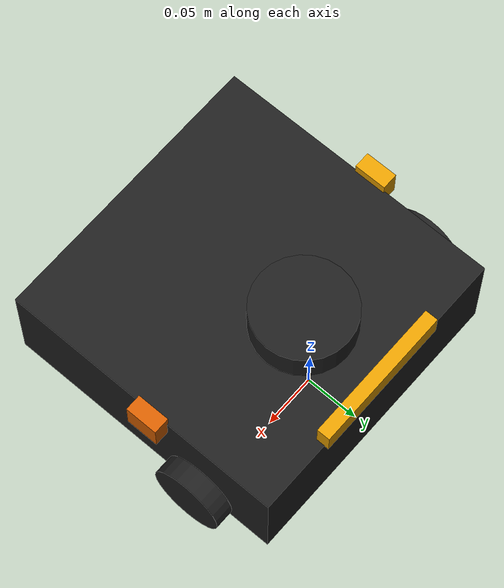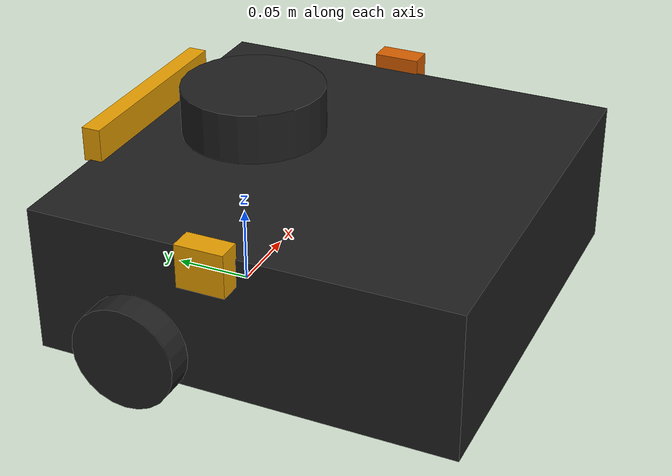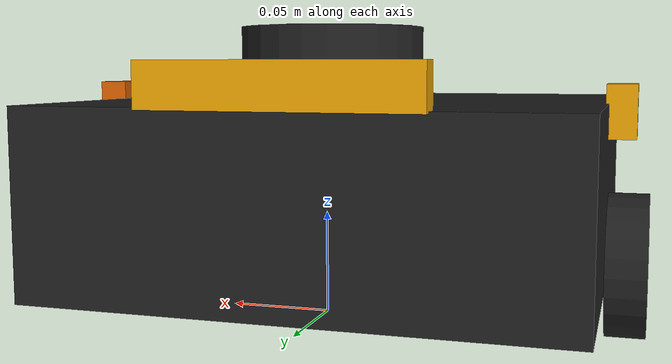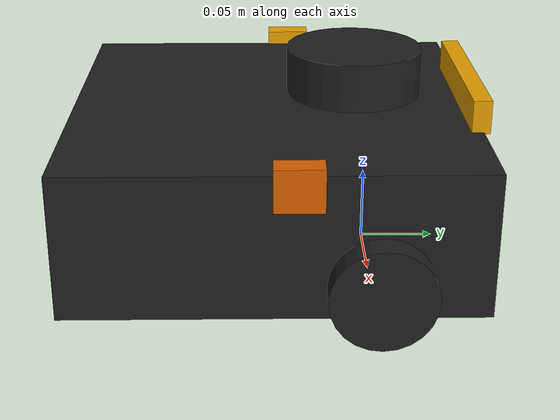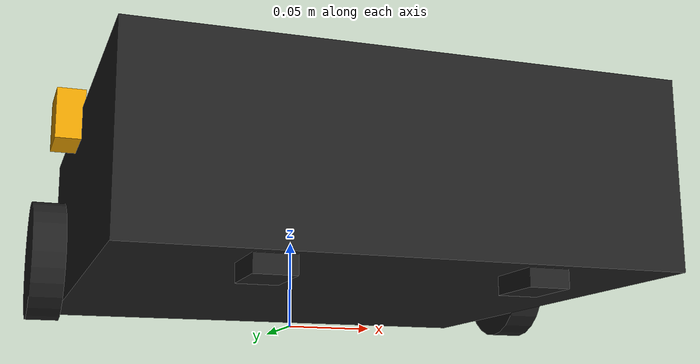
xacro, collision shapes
<?xml version="1.0" ?>
<robot name="turtlebot3_waffle_for_open_manipulator" xmlns:xacro="http://ros.org/wiki/xacro">
  <xacro:include filename="$(find gazebo_indus)/urdf/common_properties.xacro"/>
  <xacro:include filename="$(find gazebo_indus)/urdf/turtlebot3_waffle.gazebo.xacro"/>

  <xacro:property name="r200_cam_rgb_px" value="0.005"/>
  <xacro:property name="r200_cam_rgb_py" value="0.018"/>
  <xacro:property name="r200_cam_rgb_pz" value="0.013"/>
  <xacro:property name="r200_cam_depth_offset" value="0.01"/>

  <link name="base_footprint"/>

  <joint name="base_joint" type="fixed">
    <parent link="base_footprint"/>
    <child link="base_link" />
    <origin xyz="0 0 0.010" rpy="0 0 1.57"/>
  </joint>

  <link name="base_link">
    <visual>
      <origin xyz="-0.064 0 0.0" rpy="0 0 0"/>
      <geometry>
        <mesh filename="package://gazebo_indus/meshes/bases/waffle_base_for_open_manipulator.stl" scale="0.001 0.001 0.001"/>
      </geometry>
      <material name="light_black"/>
    </visual>

    <collision>
      <origin xyz="-0.064 0 0.047" rpy="0 0 0"/>
      <geometry>
        <box size="0.266 0.266 0.094"/>
      </geometry>
    </collision>

    <inertial>
      <origin xyz="0 0 0" rpy="0 0 0"/>
      <mass value="1.3729096e+00"/>
      <inertia ixx="8.7002718e-03" ixy="-4.7576583e-05" ixz="1.1160499e-04"
               iyy="8.6195418e-03" iyz="-3.5422299e-06"
               izz="1.4612727e-02" />
    </inertial>
  </link>

  <joint name="wheel_left_joint" type="continuous">
    <parent link="base_link"/>
    <child link="wheel_left_link"/>
    <origin xyz="0.0 0.144 0.023" rpy="-1.57 0 0"/>
    <axis xyz="0 0 1"/>
  </joint>

  <link name="wheel_left_link">
    <visual>
      <origin xyz="0 0 0" rpy="1.57 0 0"/>
      <geometry>
        <mesh filename="package://gazebo_indus/meshes/wheels/left_tire.stl" scale="0.001 0.001 0.001"/>
      </geometry>
      <material name="dark"/>
    </visual>

    <collision>
      <origin xyz="0 0.001 0" rpy="0 0 0"/>
      <geometry>
        <cylinder length="0.018" radius="0.033"/>
      </geometry>
    </collision>

    <inertial>
      <origin xyz="0 0 0" />
      <mass value="2.8498940e-02" />
      <inertia ixx="1.1175580e-05" ixy="-4.2369783e-11" ixz="-5.9381719e-09"
               iyy="1.1192413e-05" iyz="-1.4400107e-11"
               izz="2.0712558e-05" />
      </inertial>
  </link>

  <joint name="wheel_right_joint" type="continuous">
    <parent link="base_link"/>
    <child link="wheel_right_link"/>
    <origin xyz="0.0 -0.144 0.023" rpy="-1.57 0 0"/>
    <axis xyz="0 0 1"/>
  </joint>

  <link name="wheel_right_link">
    <visual>
      <origin xyz="0 0 0" rpy="1.57 0 0"/>
      <geometry>
        <mesh filename="package://gazebo_indus/meshes/wheels/right_tire.stl" scale="0.001 0.001 0.001"/>
      </geometry>
      <material name="dark"/>
    </visual>

    <collision>
      <origin xyz="0 0.001 0" rpy="0 0 0"/>
      <geometry>
        <cylinder length="0.018" radius="0.033"/>
      </geometry>
    </collision>

    <inertial>
      <origin xyz="0 0 0" />
      <mass value="2.8498940e-02" />
      <inertia ixx="1.1175580e-05" ixy="-4.2369783e-11" ixz="-5.9381719e-09"
               iyy="1.1192413e-05" iyz="-1.4400107e-11"
               izz="2.0712558e-05" />
      </inertial>
  </link>

  <joint name="caster_back_right_joint" type="fixed">
    <parent link="base_link"/>
    <child link="caster_back_right_link"/>
    <origin xyz="-0.177 -0.064 -0.004" rpy="-1.57 0 0"/>
  </joint>

  <link name="caster_back_right_link">
    <collision>
      <origin xyz="0 0.001 0" rpy="0 0 0"/>
      <geometry>
        <box size="0.030 0.009 0.020"/>
      </geometry>
    </collision>

    <inertial>
      <origin xyz="0 0 0" />
      <mass value="0.005" />
      <inertia ixx="0.001" ixy="0.0" ixz="0.0"
               iyy="0.001" iyz="0.0"
               izz="0.001" />
    </inertial>
  </link>

  <joint name="caster_back_left_joint" type="fixed">
    <parent link="base_link"/>
    <child link="caster_back_left_link"/>
    <origin xyz="-0.177 0.064 -0.004" rpy="-1.57 0 0"/>
  </joint>

  <link name="caster_back_left_link">
    <collision>
      <origin xyz="0 0.001 0" rpy="0 0 0"/>
      <geometry>
        <box size="0.030 0.009 0.020"/>
      </geometry>
    </collision>

    <inertial>
      <origin xyz="0 0 0" />
      <mass value="0.005" />
      <inertia ixx="0.001" ixy="0.0" ixz="0.0"
               iyy="0.001" iyz="0.0"
               izz="0.001" />
    </inertial>
  </link>

  <joint name="imu_joint" type="fixed">
    <parent link="base_link"/>
    <child link="imu_link"/>
    <origin xyz="0.0 0 0.068" rpy="0 0 0"/>
  </joint>

  <link name="imu_link"/>

  <joint name="scan_joint" type="fixed">
    <parent link="base_link"/>
    <child link="base_scan"/>
    <origin xyz="-0.024 0 0.122" rpy="0 0 0"/>
  </joint>

  <link name="base_scan">
    <visual>
      <origin xyz="0 0 0.0" rpy="0 0 0"/>
      <geometry>
        <mesh filename="package://gazebo_indus/meshes/sensors/lds.stl" scale="0.001 0.001 0.001"/>
      </geometry>
      <material name="dark"/>
    </visual>

    <collision>
      <origin xyz="0.015 0 -0.0065" rpy="0 0 0"/>
      <geometry>
        <cylinder length="0.0315" radius="0.045"/>
      </geometry>
    </collision>

    <inertial>
      <mass value="0.114" />
      <origin xyz="0 0 0" />
      <inertia ixx="0.001" ixy="0.0" ixz="0.0"
               iyy="0.001" iyz="0.0"
               izz="0.001" />
    </inertial>
  </link>

  <joint name="camera_joint" type="fixed">
    <origin xyz="0.064 -0.065 0.094" rpy="0 0 0"/>
    <parent link="base_link"/>
    <child link="camera_link"/>
  </joint>

  <link name="camera_link">
    <visual>
     <origin xyz="0 0 0" rpy="1.57 0 1.57"/>
      <geometry>
       <mesh filename="package://gazebo_indus/meshes/sensors/r200.dae" />
      </geometry>
    </visual>
    <collision>
      <origin xyz="0.003 0.065 0.010" rpy="0 0 0"/>
      <geometry>
        <box size="0.012 0.132 0.022"/>
      </geometry>
    </collision>

    <!-- This inertial field needs doesn't contain reliable data!! -->
  </link>

  <joint name="camera_rgb_joint" type="fixed">
    <origin xyz="${r200_cam_rgb_px} ${r200_cam_rgb_py} ${r200_cam_rgb_pz}" rpy="0 0 0"/>
    <parent link="camera_link"/>
    <child link="camera_rgb_frame"/>
  </joint>
  <link name="camera_rgb_frame"/>

  <joint name="camera_rgb_optical_joint" type="fixed">
    <origin xyz="0 0 0" rpy="-1.57 0 -1.57"/>
    <parent link="camera_rgb_frame"/>
    <child link="camera_rgb_optical_frame"/>
  </joint>
  <link name="camera_rgb_optical_frame"/>

  <joint name="camera_depth_joint" type="fixed">
    <origin xyz="${r200_cam_rgb_px} ${r200_cam_rgb_py + r200_cam_depth_offset} ${r200_cam_rgb_pz}" rpy="0 0 0"/>
    <parent link="camera_link"/>
    <child link="camera_depth_frame"/>
  </joint>
  <link name="camera_depth_frame"/>

  <joint name="camera_depth_optical_joint" type="fixed">
    <origin xyz="0 0 0" rpy="-1.57 0 -1.57"/>
    <parent link="camera_depth_frame"/>
    <child link="camera_depth_optical_frame"/>
  </joint>
  <link name="camera_depth_optical_frame"/>

  <joint name="camera_joint2" type="fixed">
    <origin xyz="-0.05 -0.139 0.09" rpy="0 0 -1.57"/>
    <parent link="base_link"/>
    <child link="camera_link2"/>
  </joint>

  <link name="camera_link2">
    <collision>
      <origin xyz=" 0 0 0" rpy="0 0 0"/>
      <geometry>
        <box size="0.015 0.030 0.027"/>
      </geometry>
    </collision>
    <visual>
      <origin xyz="0 0 0" rpy="0 0 0"/>
      <geometry>
        <box size="0.015 0.030 0.027"/>
      </geometry>
    </visual>
  </link>

  <joint name="camera_rgb_joint2" type="fixed">
    <origin xyz="0 0 0" rpy="0 0 0"/>
    <parent link="camera_link2"/>
    <child link="camera_rgb_frame2"/>
  </joint>
  <link name="camera_rgb_frame2"/>

  <joint name="camera_rgb_optical_joint2" type="fixed">
    <origin xyz="0 0 0" rpy="0 0 0"/>
    <parent link="camera_rgb_frame2"/>
    <child link="camera_rgb_optical_frame2"/>
  </joint>
  <link name="camera_rgb_optical_frame2"/>

 <joint name="camera_joint3" type="fixed">
    <origin xyz="-0.05 0.139 0.09" rpy="0 0 1.57"/>
    <parent link="base_link"/>
    <child link="camera_link3"/>
  </joint>

  <link name="camera_link3">
    <collision>
      <origin xyz=" 0 0 0" rpy="0 0 0"/>
      <geometry>
        <box size="0.015 0.030 0.027"/>
      </geometry>
    </collision>
    <visual>
      <origin xyz="0 0 0" rpy="0 0 0"/>
      <geometry>
        <box size="0.015 0.030 0.027"/>
      </geometry>
    </visual>
  </link>

  <joint name="camera_rgb_joint3" type="fixed">
    <origin xyz="0 0 0" rpy="0 0 0"/>
    <parent link="camera_link3"/>
    <child link="camera_rgb_frame3"/>
  </joint>
  <link name="camera_rgb_frame3"/>

  <joint name="camera_rgb_optical_joint3" type="fixed">
    <origin xyz="0 0 0" rpy="0 0 0"/>
    <parent link="camera_rgb_frame3"/>
    <child link="camera_rgb_optical_frame3"/>
  </joint>
  <link name="camera_rgb_optical_frame3"/>

</robot>
